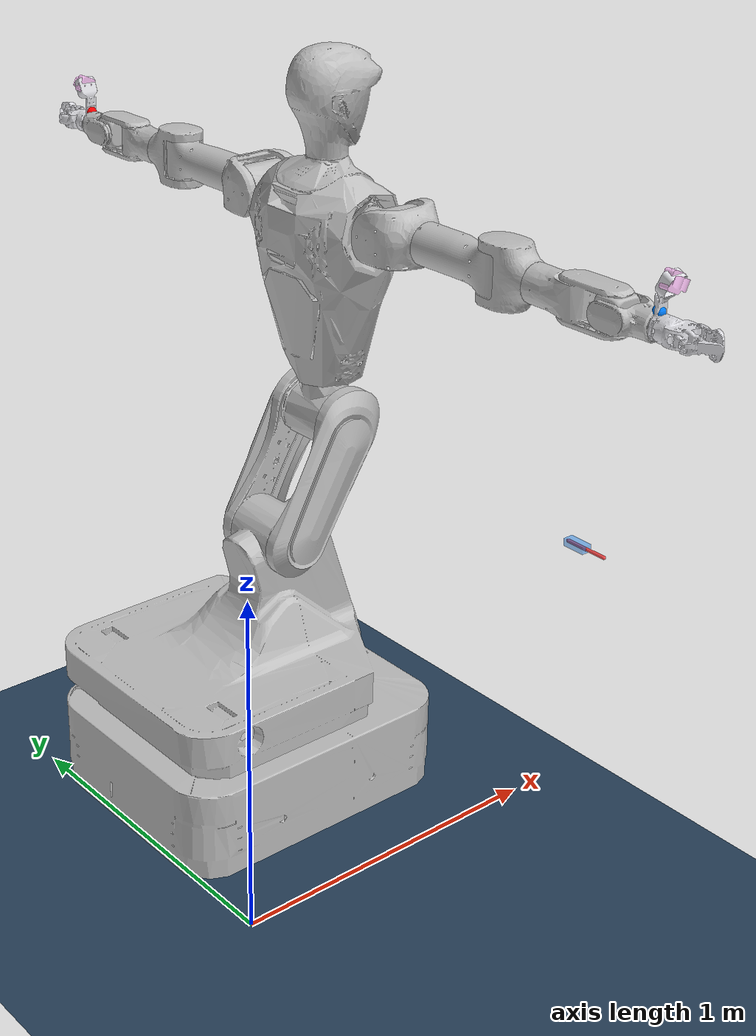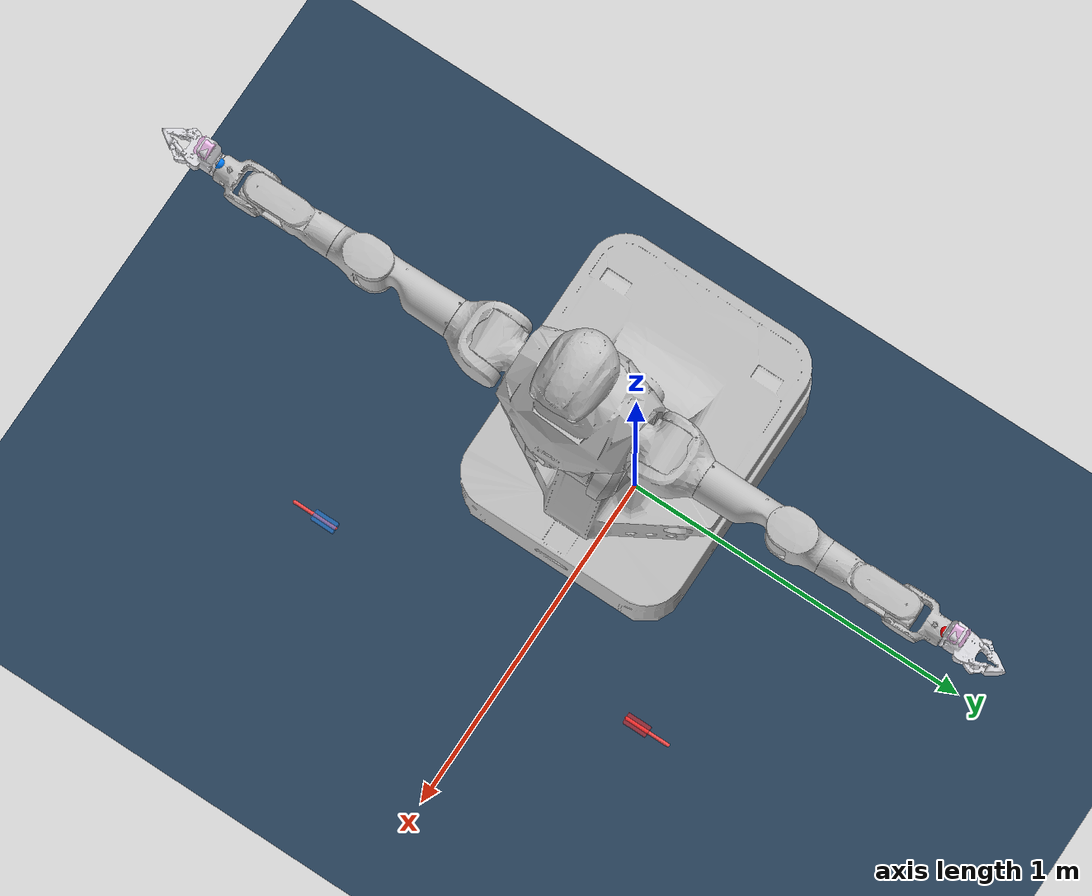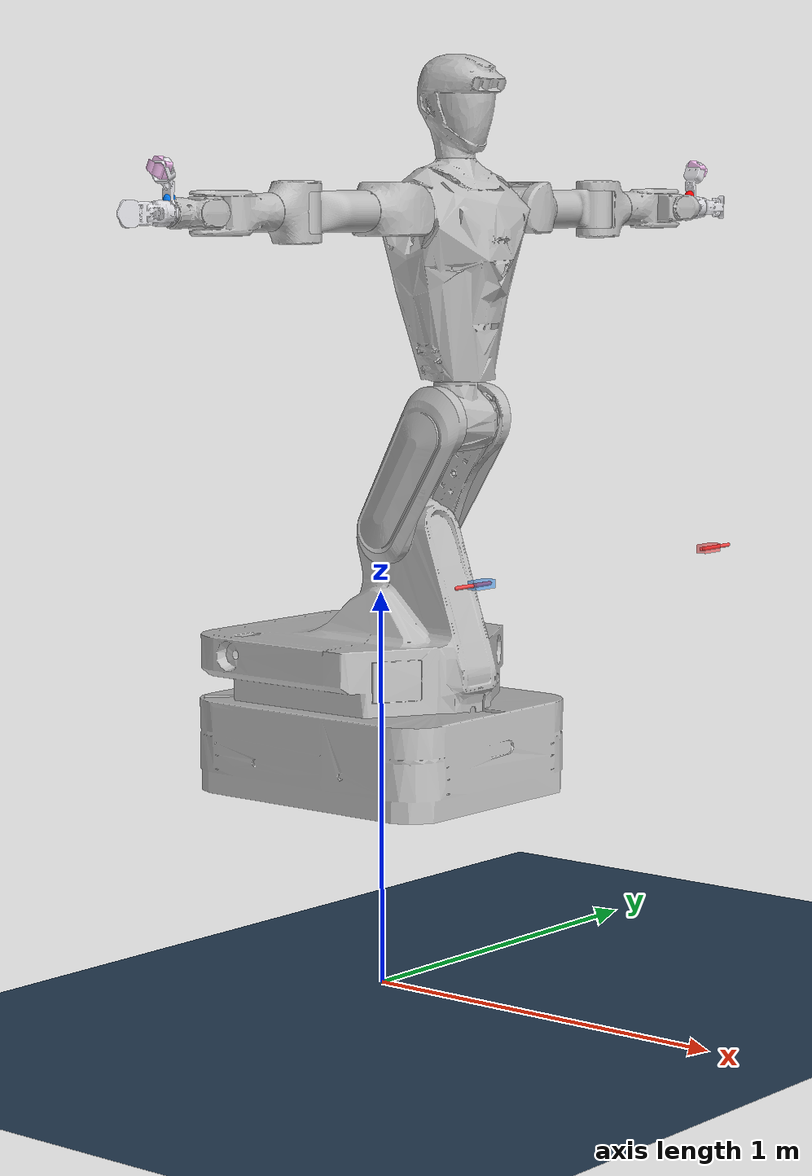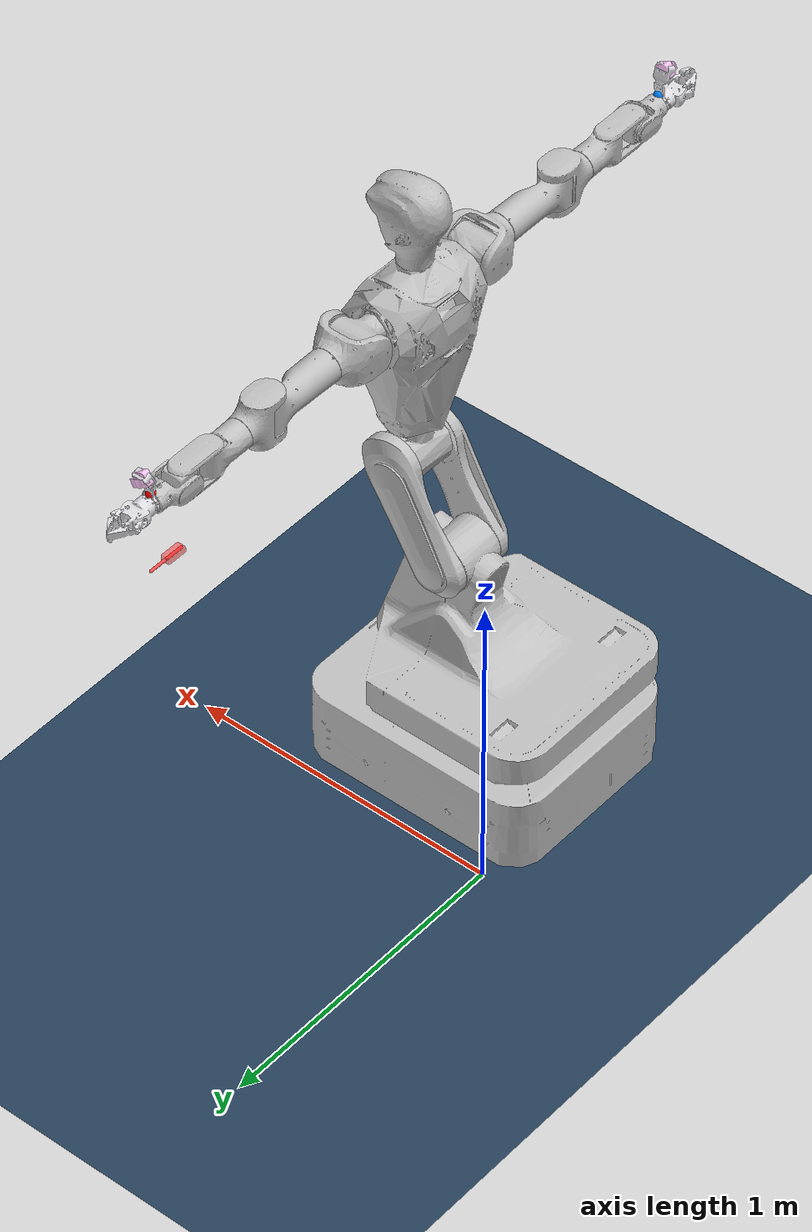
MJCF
<mujoco model="dual_arm_robot">
    <compiler angle="radian" meshdir="../meshes/"/>

    <option gravity="0 0 -9.81" timestep="0.002" integrator="implicitfast" iterations="100" solver="Newton" tolerance="1e-8"/>

    <visual>
        <global offwidth="1920" offheight="1080"/>
        <quality shadowsize="4096"/>
    </visual>

    <default>
        <joint armature="10" damping="100" limited="true" frictionloss="1"/>
        <geom condim="4" friction="1 0.5 0.5" margin="0.001"/>
        <default class="visual_geom">
            <geom contype="0" conaffinity="0"/>
        </default>
        <default class="collision_geom">
            <geom group="3" rgba="1 1 1 0"/>
        </default>
        <motor ctrllimited="true" ctrlrange="-500 500"/>
    </default>

    <asset>
        <!-- Visual meshes -->
        <mesh name="base_visual" file="visual/base_link.STL"/>
        <mesh name="body3_visual" file="visual/body3_link.STL"/>
        <mesh name="body2_visual" file="visual/body2_link.STL"/>
        <mesh name="body1_visual" file="visual/body1_link.STL"/>
        <mesh name="hand2_visual" file="visual/hand2_link.STL"/>
        <mesh name="hand1_visual" file="visual/hand1_link.STL"/>

        <mesh name="left_arm1_visual" file="visual/left_arm_link1.STL"/>
        <mesh name="left_arm2_visual" file="visual/left_arm_link2.STL"/>
        <mesh name="left_arm3_visual" file="visual/left_arm_link3.STL"/>
        <mesh name="left_arm4_visual" file="visual/left_arm_link4.STL"/>
        <mesh name="left_arm5_visual" file="visual/left_arm_link5.STL"/>
        <mesh name="left_arm6_visual" file="visual/left_arm_link6.STL"/>
        <mesh name="left_arm7_visual" file="visual/left_arm_link7.STL"/>
        <mesh name="left_arm8_visual" file="visual/left_arm_link8.STL"/>
        <mesh name="left_arm9_visual" file="visual/left_arm_link9.STL"/>
        <mesh name="left_arm10_visual" file="visual/left_arm_link10.STL"/>

        <mesh name="right_arm1_visual" file="visual/right_arm_link1.STL"/>
        <mesh name="right_arm2_visual" file="visual/right_arm_link2.STL"/>
        <mesh name="right_arm3_visual" file="visual/right_arm_link3.STL"/>
        <mesh name="right_arm4_visual" file="visual/right_arm_link4.STL"/>
        <mesh name="right_arm5_visual" file="visual/right_arm_link5.STL"/>
        <mesh name="right_arm6_visual" file="visual/right_arm_link6.STL"/>
        <mesh name="right_arm7_visual" file="visual/right_arm_link7.STL"/>
        <mesh name="right_arm8_visual" file="visual/right_arm_link8.STL"/>
        <mesh name="right_arm9_visual" file="visual/right_arm_link9.STL"/>
        <mesh name="right_arm10_visual" file="visual/right_arm_link10.STL"/>

        <!-- Collision meshes -->
        <mesh name="base_collision" file="collision/base_link.STL"/>
        <mesh name="body3_collision" file="collision/body3_link.STL"/>
        <mesh name="body2_collision" file="collision/body2_link.STL"/>
        <mesh name="body1_collision" file="collision/body1_link.STL"/>
        <mesh name="hand2_collision" file="collision/hand2_link.STL"/>
        <mesh name="hand1_collision" file="collision/hand1_link.STL"/>

        <mesh name="left_arm1_collision" file="collision/left_arm_link1.STL"/>
        <mesh name="left_arm2_collision" file="collision/left_arm_link2.STL"/>
        <mesh name="left_arm3_collision" file="collision/left_arm_link3.STL"/>
        <mesh name="left_arm4_collision" file="collision/left_arm_link4.STL"/>
        <mesh name="left_arm5_collision" file="collision/left_arm_link5.STL"/>
        <mesh name="left_arm6_collision" file="collision/left_arm_link6.STL"/>
        <mesh name="left_arm7_collision" file="collision/left_arm_link7.STL"/>
        <mesh name="left_arm8_collision" file="collision/left_arm_link8.STL"/>
        <mesh name="left_arm9_collision" file="collision/left_arm_link9.STL"/>
        <mesh name="left_arm10_collision" file="collision/left_arm_link10.STL"/>

        <mesh name="right_arm1_collision" file="collision/right_arm_link1.STL"/>
        <mesh name="right_arm2_collision" file="collision/right_arm_link2.STL"/>
        <mesh name="right_arm3_collision" file="collision/right_arm_link3.STL"/>
        <mesh name="right_arm4_collision" file="collision/right_arm_link4.STL"/>
        <mesh name="right_arm5_collision" file="collision/right_arm_link5.STL"/>
        <mesh name="right_arm6_collision" file="collision/right_arm_link6.STL"/>
        <mesh name="right_arm7_collision" file="collision/right_arm_link7.STL"/>
        <mesh name="right_arm8_collision" file="collision/right_arm_link8.STL"/>
        <mesh name="right_arm9_collision" file="collision/right_arm_link9.STL"/>
        <mesh name="right_arm10_collision" file="collision/right_arm_link10.STL"/>

        <texture type="skybox" builtin="gradient" rgb1="0.3 0.5 0.7" rgb2="0 0 0" width="512" height="3072"/>
        <texture type="2d" name="groundplane" builtin="checker" mark="edge" rgb1="0.2 0.3 0.4" rgb2="0.1 0.2 0.3" markrgb="0.8 0.8 0.8" width="300" height="300"/>
        <material name="groundplane" texture="groundplane" texuniform="true" texrepeat="5 5" reflectance="0.2"/>
    </asset>

    <keyframe>
        <!-- Home position: all joints at zero -->
        <key name="home"
             qpos="0 0 0 0 0 0 0 0 0 0 0 0 0 0 0 0 0 0 0"
             qvel="0 0 0 0 0 0 0 0 0 0 0 0 0 0 0 0 0 0 0"
             ctrl="0 0 0 0 0 0 0 0 0 0 0 0 0 0 0 0 0 0 0"/>

        <!-- Teleop startup pose: wrist joints rotated so the hand cameras point upward -->
        <key name="teleop_home"
             time="762.896"
             qpos="0 0 0 0 0 0 -1.34061 0 -1.48194 1.3826 0 0 0 1.34061 0 1.43716 -1.3826 0 0"
             qvel="0 0 0 0 0 0 0 0 0 0 0 0 0 0 0 0 0 0 0"
             ctrl="0 0 0 0 0 0 -1.34061 0 -1.48194 1.3826 0 0 0 1.34061 0 1.43716 -1.3826 0 0"/>
    </keyframe>

    <worldbody>
        <!-- Camera looking at robot -->
        <camera name="main_cam" pos="2 -2 1.5" quat="0.5 0.5 0.5 0.5"/>
        <camera name="front" pos="2 0 1" xyaxes="0 1 0 0 0 1"/>
        <camera name="side" pos="0 2 1" xyaxes="-1 0 0 0 0 1"/>

        <light pos="0 0 5" dir="0 0 -1" directional="true"/>
        <light pos="2 2 3" dir="-0.5 -0.5 -1"/>
        <geom name="floor" pos="0 0 0" size="5 5 0.1" type="plane" material="groundplane"/>

        <!-- IK target markers (updated by mujoco_sim_node callbacks) -->
        <body name="left_target_marker" mocap="true" pos="0.68 0.42 1.12">
            <!-- target_pose 是 link8 姿态；marker 长轴表示 link8 -> link14 的握持方向。 -->
            <geom class="visual_geom" name="left_target_geom" type="box"
                  pos="0 0.030 0"
                  quat="0.70710678 -0.70710678 0 0"
                  size="0.014 0.010 0.032"
                  rgba="1 0.12 0.12 0.50"/>
            <geom class="visual_geom" name="left_target_nose" type="capsule"
                  fromto="0 0 0 0 0.118 0"
                  size="0.0048"
                  rgba="1 0.30 0.30 0.98"/>
        </body>
        <body name="right_target_marker" mocap="true" pos="0.68 -0.42 1.12">
            <geom class="visual_geom" name="right_target_geom" type="box"
                  pos="0 -0.030 0"
                  quat="0.70710678 0.70710678 0 0"
                  size="0.014 0.010 0.032"
                  rgba="0.12 0.55 1 0.50"/>
            <geom class="visual_geom" name="right_target_nose" type="capsule"
                  fromto="0 0 0 0 -0.118 0"
                  size="0.0048"
                  rgba="1 0.30 0.30 0.98"/>
        </body>

        <!-- Workspace center markers (updated by /arm_* /workspace_center) -->
        <body name="left_workspace_center_marker" mocap="true" pos="0.2 0.25 0.6">
            <geom class="visual_geom" name="left_workspace_center_geom" type="sphere" size="0.012" rgba="1 0.55 0.2 0.95"/>
        </body>
        <body name="right_workspace_center_marker" mocap="true" pos="0.2 -0.25 0.6">
            <geom class="visual_geom" name="right_workspace_center_geom" type="sphere" size="0.012" rgba="0.2 1 0.55 0.95"/>
        </body>

        <!-- Base link (link0) - fixed to world -->
        <body name="link0" pos="0 0 0.5">
            <geom class="visual_geom" type="mesh" mesh="base_visual" rgba="0.75 0.75 0.75 1"/>
            <geom class="collision_geom" type="box" pos="0.065670 0.003475 -0.026748" size="0.322572 0.264930 0.322390"/>
            <inertial pos="0.0104 -0.0004 0.1597" mass="182.85"
                      diaginertia="6.378 8.383 13.069"/>

            <!-- Body chain: body3 -> link1 -> body2 -> link2 -> body1 -> link3 -> hand2 -> link4 -> hand1 -> link5 -->
            <body name="link1" pos="0.0817 -0.083 0.6631">
                <joint name="body3" type="hinge" axis="0 -1 0" range="-2.094395 2.007129" damping="3000" frictionloss="1"/>
                <geom class="visual_geom" type="mesh" mesh="body3_visual" rgba="0.75 0.75 0.75 1"/>
                <geom class="collision_geom" type="box" pos="0.000001 0.001278 -0.001010" size="0.072109 0.110043 0.197059"/>
                <inertial pos="0.0815 0.0817 0.1411" mass="3.87"
                          diaginertia="0.041 0.058 0.018"/>

                <body name="link2" pos="0.16 0 0.2771">
                    <joint name="body2" type="hinge" axis="0 1 0" range="-2.007129 2.094395" damping="3000" frictionloss="1"/>
                    <geom class="visual_geom" type="mesh" mesh="body2_visual" rgba="0.75 0.75 0.75 1"/>
                    <geom class="collision_geom" type="box" pos="-0.000818 -0.009780 0.011888" size="0.060645 0.076741 0.090885"/>
                    <inertial pos="0.0001 0.0758 0.0176" mass="8.43"
                              diaginertia="0.029 0.030 0.024"/>

                    <body name="link3" pos="0 0.083 0.1245">
                        <joint name="body1" type="hinge" axis="0 0 1" range="-2.600541 2.600541"/>
                        <geom class="visual_geom" type="mesh" mesh="body1_visual" rgba="0.75 0.75 0.75 1"/>
                        <geom class="collision_geom" type="box" pos="0.005451 0.000852 -0.035797" size="0.114144 0.143758 0.213480"/>
                        <inertial pos="0.0003 0.0003 0.2697" mass="11.79"
                                  diaginertia="0.083 0.068 0.040"/>

                        <!-- hand2 and link4 -->
                        <body name="link4" pos="0 0 0.4572">
                            <joint name="hand2" type="hinge" axis="0 0 1" range="-0.767945 0.767945"/>
                            <geom class="visual_geom" type="mesh" mesh="hand2_visual" rgba="0.75 0.75 0.75 1"/>
                            <geom class="collision_geom" type="box" pos="0.000072 0.006927 0.002959" size="0.016067 0.027436 0.031647"/>
                            <inertial pos="0 0.0063 0.0206" mass="0.079"
                                      diaginertia="0.00005 0.00003 0.00004"/>

                            <!-- hand1 and link5 -->
                            <body name="link5" pos="0 -0.03475 0.05">
                                <joint name="hand1" type="hinge" axis="0 1 0" range="-2.775074 2.775074"/>
                                <geom class="visual_geom" type="mesh" mesh="hand1_visual" rgba="0.75 0.75 0.75 1"/>
                                <geom class="collision_geom" type="box" pos="0.000036 0.003629 -0.023173" size="0.061963 0.079307 0.103886"/>
                                <inertial pos="0.7415 0.0347 -0.053" mass="15.85"
                                          diaginertia="2.51 1.68 2.06"/>
                            </body>
                        </body>

                        <!-- Left arm chain from link3 -->
                        <body name="link6l" pos="0 0.14 0.3872">
                            <joint name="left_arm1" type="hinge" axis="0 1 0" range="-3.141593 1.570796"/>
                            <geom class="visual_geom" type="mesh" mesh="left_arm1_visual" rgba="0.75 0.75 0.75 1"/>
                            <geom class="collision_geom" type="box" pos="-0.000205 -0.001155 0.015855" size="0.039620 0.049465 0.059874"/>
                            <inertial pos="0.0059 0.0939 0.0003" mass="2.43"
                                      diaginertia="0.0038 0.0035 0.0044"/>

                            <body name="link7l" pos="0.063 0.1 0">
                                <joint name="left_arm2" type="hinge" axis="1 0 0" range="-1.605703 1.37881"/>
                                <geom class="visual_geom" type="mesh" mesh="left_arm2_visual" rgba="0.75 0.75 0.75 1"/>
                                <geom class="collision_geom" type="box" pos="0.004338 0.008038 0.000522" size="0.046158 0.058746 0.063246"/>
                                <inertial pos="-0.0602 0.0405 -0.0002" mass="0.66"
                                          diaginertia="0.0016 0.002 0.0022"/>

                                <body name="link8l" pos="-0.063 0.092 0" euler="1.5708 0 0">
                                    <joint name="left_arm3" type="hinge" axis="0 0 -1" range="-2.792527 2.792527"/>
                                    <geom class="visual_geom" type="mesh" mesh="left_arm3_visual" rgba="0.75 0.75 0.75 1"/>
                                    <geom class="collision_geom" type="box" pos="0.000689 -0.001629 0.012741" size="0.035524 0.042830 0.098219"/>
                                    <inertial pos="-0.0007 0.0012 -0.1388" mass="1.70"
                                              diaginertia="0.0043 0.0041 0.002"/>

                                    <body name="link9l" pos="0 0.055 -0.228">
                                        <joint name="left_arm4" type="hinge" axis="0 1 0" range="-1.989675 0.15708"/>
                                        <geom class="visual_geom" type="mesh" mesh="left_arm4_visual" rgba="0.75 0.75 0.75 1"/>
                                        <geom class="collision_geom" type="box" pos="0.000060 -0.000412 0.000088" size="0.033244 0.053138 0.051411"/>
                                        <inertial pos="0 -0.0554 -0.0338" mass="0.47"
                                                  diaginertia="0.0011 0.0008 0.0009"/>

                                        <body name="link10l" pos="0 -0.055 -0.075">
                                            <joint name="left_arm5" type="hinge" axis="0 0 -1" range="-2.792527 2.792527"/>
                                            <geom class="visual_geom" type="mesh" mesh="left_arm5_visual" rgba="0.75 0.75 0.75 1"/>
                                            <geom class="collision_geom" type="box" pos="0.000266 0.002035 -0.012022" size="0.030638 0.036583 0.097597"/>
                                            <inertial pos="0 -0.002 -0.1024" mass="1.47"
                                                      diaginertia="0.0016 0.0015 0.0009"/>

                                            <body name="link11l" pos="0 -0.037 -0.245">
                                                <joint name="left_arm6" type="hinge" axis="0 1 0" range="-1.047198 1.047198"/>
                                                <geom class="visual_geom" type="mesh" mesh="left_arm6_visual" rgba="0.75 0.75 0.75 1"/>
                                                <geom class="collision_geom" type="box" pos="-0.000198 0.004437 0.000628" size="0.026380 0.032623 0.031594"/>
                                                <inertial pos="-0.0034 0.0364 0.0003" mass="0.63"
                                                          diaginertia="0.0004 0.00036 0.00039"/>

                                                <body name="link12l" pos="-0.0385 0.037 0" euler="-1.5708 0 0">
                                                    <joint name="left_arm7" type="hinge" axis="-1 0 0" range="-1.570796 1.570796"/>
                                                    <geom class="visual_geom" type="mesh" mesh="left_arm7_visual" rgba="0.75 0.75 0.75 1"/>
                                                    <geom class="collision_geom" type="box" pos="-0.000332 0.003315 0.010292" size="0.022745 0.037583 0.049620"/>
                                                    <inertial pos="0.0396 0.0517 0.0003" mass="0.24"
                                                              diaginertia="0.00021 0.00017 0.00027"/>

                                                    <!-- Fixed end effector links for left arm -->
                                                    <body name="link13l" pos="0.0385 0.10772 0">
                                                        <geom class="visual_geom" type="mesh" mesh="left_arm8_visual" rgba="0.87 0.87 0.89 1"/>
                                                        <geom class="collision_geom" type="box" pos="0.000745 0.000026 -0.019274" size="0.011408 0.017442 0.045960"/>
                                                        <inertial pos="0.0002 0.0086 0.0481" mass="0.13"
                                                                  diaginertia="0.00007 0.00008 0.00003"/>
                                                        <!-- Left arm IK end-effector frame marker (link12l-link13l contact / left_arm_link8 origin) -->
                                                        <site name="left_ee" type="sphere" pos="0 0 0" size="0.012" rgba="1 0 0 1"/>
                                                        <geom class="visual_geom" name="left_ee_marker" type="sphere" pos="0 0 0.03" size="0.014" rgba="1 0 0 1"/>

                                                        <body name="link14l" pos="0 0.008 0">
                                                            <geom class="visual_geom" type="mesh" mesh="left_arm9_visual" rgba="0.87 0.87 0.89 1"/>
                                                            <geom class="collision_geom" type="box" pos="-0.000149 0.002321 -0.017551" size="0.017977 0.026244 0.045850"/>
                                                            <inertial pos="0.0004 0.0145 -0.0008" mass="0.026"
                                                                      diaginertia="0.000011 0.000019 0.000011"/>
                                                        </body>

                                                        <body name="link15l" pos="0 0.0127 0.0985" euler="0 0.4363 1.5708">
                                                            <geom class="visual_geom" type="mesh" mesh="left_arm10_visual" rgba="1 0.78 0.98 1"/>
                                                            <geom class="collision_geom" type="box" pos="0.005228 -0.000038 -0.000157" size="0.011167 0.012156 0.013461"/>
                                                            <inertial pos="0.0116 0 0" mass="0.039"
                                                                      diaginertia="0.000011 0.000007 0.000007"/>
                                                        </body>
                                                    </body>
                                                </body>
                                            </body>
                                        </body>
                                    </body>
                                </body>
                            </body>
                        </body>

                        <!-- Right arm chain from link3 -->
                        <body name="link6r" pos="0 -0.14 0.3872">
                            <joint name="right_arm1" type="hinge" axis="0 -1 0" range="-1.570796 3.141593"/>
                            <geom class="visual_geom" type="mesh" mesh="right_arm1_visual" rgba="0.75 0.75 0.75 1"/>
                            <geom class="collision_geom" type="box" pos="-0.000096 -0.000867 -0.015482" size="0.039614 0.049356 0.060034"/>
                            <inertial pos="0.0064 -0.0936 0.0003" mass="2.45"
                                      diaginertia="0.0039 0.0036 0.0044"/>

                            <body name="link7r" pos="0.063 -0.1 0">
                                <joint name="right_arm2" type="hinge" axis="1 0 0" range="-1.37881 1.605703"/>
                                <geom class="visual_geom" type="mesh" mesh="right_arm2_visual" rgba="0.75 0.75 0.75 1"/>
                                <geom class="collision_geom" type="box" pos="0.004064 -0.008153 0.000768" size="0.046197 0.058995 0.063250"/>
                                <inertial pos="-0.0602 -0.0405 -0.0002" mass="0.66"
                                          diaginertia="0.0016 0.002 0.0022"/>

                                <body name="link8r" pos="-0.063 -0.092 0" euler="-1.5708 0 0">
                                    <joint name="right_arm3" type="hinge" axis="0 0 -1" range="-2.775074 2.775074"/>
                                    <geom class="visual_geom" type="mesh" mesh="right_arm3_visual" rgba="0.75 0.75 0.75 1"/>
                                    <geom class="collision_geom" type="box" pos="0.000696 0.000415 0.012654" size="0.035523 0.042672 0.098468"/>
                                    <inertial pos="-0.0007 -0.001 -0.1388" mass="1.70"
                                              diaginertia="0.0043 0.0041 0.002"/>

                                    <body name="link9r" pos="0 -0.055 -0.228">
                                        <joint name="right_arm4" type="hinge" axis="0 -1 0" range="-0.174533 1.989675"/>
                                        <geom class="visual_geom" type="mesh" mesh="right_arm4_visual" rgba="0.75 0.75 0.75 1"/>
                                        <geom class="collision_geom" type="box" pos="-0.000060 -0.000412 -0.000088" size="0.033244 0.053138 0.051411"/>
                                        <inertial pos="0 0.0554 -0.0338" mass="0.47"
                                                  diaginertia="0.0011 0.0008 0.0009"/>

                                        <body name="link10r" pos="0 0.055 -0.075">
                                            <joint name="right_arm5" type="hinge" axis="0 0 -1" range="-2.775074 2.775074"/>
                                            <geom class="visual_geom" type="mesh" mesh="right_arm5_visual" rgba="0.75 0.75 0.75 1"/>
                                            <geom class="collision_geom" type="box" pos="-0.000266 -0.002035 -0.012022" size="0.030638 0.036583 0.097597"/>
                                            <inertial pos="0 0.002 -0.1024" mass="1.47"
                                                      diaginertia="0.0016 0.0015 0.0009"/>

                                            <body name="link11r" pos="0 0.037 -0.245">
                                                <joint name="right_arm6" type="hinge" axis="0 -1 0" range="-1.047198 1.047198"/>
                                                <geom class="visual_geom" type="mesh" mesh="right_arm6_visual" rgba="0.75 0.75 0.75 1"/>
                                                <geom class="collision_geom" type="box" pos="-0.000177 0.004627 -0.000667" size="0.026606 0.032105 0.031050"/>
                                                <inertial pos="-0.0034 -0.0364 0.0003" mass="0.63"
                                                          diaginertia="0.0004 0.00036 0.00039"/>

                                                <body name="link12r" pos="-0.0385 -0.037 0" euler="1.5708 0 0">
                                                    <joint name="right_arm7" type="hinge" axis="-1 0 0" range="-1.570796 1.570796"/>
                                                    <geom class="visual_geom" type="mesh" mesh="right_arm7_visual" rgba="0.75 0.75 0.75 1"/>
                                                    <geom class="collision_geom" type="box" pos="0.000009 0.003830 -0.010008" size="0.022569 0.037851 0.049736"/>
                                                    <inertial pos="0.0397 -0.0517 0.0003" mass="0.24"
                                                              diaginertia="0.00021 0.00017 0.00027"/>

                                                    <!-- Fixed end effector links for right arm -->
                                                    <body name="link13r" pos="0.0385 -0.10772 0">
                                                        <geom class="visual_geom" type="mesh" mesh="right_arm8_visual" rgba="0.87 0.87 0.89 1"/>
                                                        <geom class="collision_geom" type="box" pos="-0.000745 -0.000026 -0.019274" size="0.011408 0.017442 0.045960"/>
                                                        <inertial pos="-0.0002 -0.0086 0.0481" mass="0.13"
                                                                  diaginertia="0.00007 0.00008 0.00003"/>
                                                        <!-- Right arm IK end-effector frame marker (link12r-link13r contact / right_arm_link8 origin) -->
                                                        <site name="right_ee" type="sphere" pos="0 0 0" size="0.012" rgba="0 0.5 1 1"/>
                                                        <geom class="visual_geom" name="right_ee_marker" type="sphere" pos="0 0 0.03" size="0.014" rgba="0 0.5 1 1"/>

                                                        <body name="link14r" pos="0 -0.008 0">
                                                            <geom class="visual_geom" type="mesh" mesh="right_arm9_visual" rgba="0.87 0.87 0.89 1"/>
                                                            <geom class="collision_geom" type="box" pos="0.000144 0.002314 0.017555" size="0.017977 0.026242 0.045849"/>
                                                            <inertial pos="0.0004 -0.0145 0.0008" mass="0.026"
                                                                      diaginertia="0.000011 0.000019 0.000011"/>
                                                        </body>

                                                        <body name="link15r" pos="0 -0.0127 0.0985" euler="0 0.4363 -1.5708">
                                                            <geom class="visual_geom" type="mesh" mesh="right_arm10_visual" rgba="1 0.78 0.98 1"/>
                                                            <geom class="collision_geom" type="box" pos="0.005228 -0.000038 -0.000157" size="0.011167 0.012156 0.013461"/>
                                                            <inertial pos="0.0116 0 0" mass="0.039"
                                                                      diaginertia="0.000011 0.000007 0.000007"/>
                                                        </body>
                                                    </body>
                                                </body>
                                            </body>
                                        </body>
                                    </body>
                                </body>
                            </body>
                        </body>
                    </body>
                </body>
            </body>
        </body>
    </worldbody>

    <contact>
        <exclude body1="link0" body2="link1"/>
        <exclude body1="link3" body2="link5"/>
        <exclude body1="link10l" body2="link12l"/>
        <exclude body1="link10r" body2="link12r"/>
        <exclude body1="link1" body2="link3"/>
        <exclude body1="link5" body2="link6l"/>
        <exclude body1="link5" body2="link6r"/>
        <exclude body1="link6l" body2="link8l"/>
        <exclude body1="link6r" body2="link8r"/>
    </contact>

    <actuator>
        <!-- Body actuators: higher stiffness, less overdamped -->
        <position name="body3" joint="body3" kp="600" kv="1800" ctrllimited="true" ctrlrange="-2.094395 2.007129"/>
        <position name="body2" joint="body2" kp="900" kv="2000" ctrllimited="true" ctrlrange="-2.007129 2.094395"/>
        <position name="body1" joint="body1" kp="2200" kv="4000" ctrllimited="true" ctrlrange="-2.600541 2.600541"/>
        <position name="hand2" joint="hand2" kp="800" kv="2000" ctrllimited="true" ctrlrange="-0.767945 0.767945"/>
        <position name="hand1" joint="hand1" kp="1200" kv="2200" ctrllimited="true" ctrlrange="-2.775074 2.775074"/>

        <!-- Left arm actuators: stronger to resist gravity -->
        <position name="left_arm1" joint="left_arm1" kp="1500" kv="250" ctrllimited="true" ctrlrange="-3.141593 1.570796"/>
        <position name="left_arm2" joint="left_arm2" kp="1500" kv="250" ctrllimited="true" ctrlrange="-1.605703 1.37881"/>
        <position name="left_arm3" joint="left_arm3" kp="1200" kv="200" ctrllimited="true" ctrlrange="-2.792527 2.792527"/>
        <position name="left_arm4" joint="left_arm4" kp="1200" kv="200" ctrllimited="true" ctrlrange="-1.989675 0.15708"/>
        <position name="left_arm5" joint="left_arm5" kp="900" kv="150" ctrllimited="true" ctrlrange="-2.792527 2.792527"/>
        <position name="left_arm6" joint="left_arm6" kp="900" kv="150" ctrllimited="true" ctrlrange="-1.047198 1.047198"/>
        <position name="left_arm7" joint="left_arm7" kp="900" kv="150" ctrllimited="true" ctrlrange="-1.570796 1.570796"/>

        <!-- Right arm actuators: stronger to resist gravity -->
        <position name="right_arm1" joint="right_arm1" kp="1500" kv="250" ctrllimited="true" ctrlrange="-1.570796 3.141593"/>
        <position name="right_arm2" joint="right_arm2" kp="1500" kv="250" ctrllimited="true" ctrlrange="-1.37881 1.605703"/>
        <position name="right_arm3" joint="right_arm3" kp="1200" kv="200" ctrllimited="true" ctrlrange="-2.775074 2.775074"/>
        <position name="right_arm4" joint="right_arm4" kp="1200" kv="200" ctrllimited="true" ctrlrange="-0.174533 1.989675"/>
        <position name="right_arm5" joint="right_arm5" kp="900" kv="150" ctrllimited="true" ctrlrange="-2.775074 2.775074"/>
        <position name="right_arm6" joint="right_arm6" kp="900" kv="150" ctrllimited="true" ctrlrange="-1.047198 1.047198"/>
        <position name="right_arm7" joint="right_arm7" kp="900" kv="150" ctrllimited="true" ctrlrange="-1.570796 1.570796"/>
    </actuator>

    <sensor>
        <!-- Joint position sensors -->
        <jointpos name="pos_body3" joint="body3"/>
        <jointpos name="pos_body2" joint="body2"/>
        <jointpos name="pos_body1" joint="body1"/>
        <jointpos name="pos_hand2" joint="hand2"/>
        <jointpos name="pos_hand1" joint="hand1"/>

        <jointpos name="pos_left_arm1" joint="left_arm1"/>
        <jointpos name="pos_left_arm2" joint="left_arm2"/>
        <jointpos name="pos_left_arm3" joint="left_arm3"/>
        <jointpos name="pos_left_arm4" joint="left_arm4"/>
        <jointpos name="pos_left_arm5" joint="left_arm5"/>
        <jointpos name="pos_left_arm6" joint="left_arm6"/>
        <jointpos name="pos_left_arm7" joint="left_arm7"/>

        <jointpos name="pos_right_arm1" joint="right_arm1"/>
        <jointpos name="pos_right_arm2" joint="right_arm2"/>
        <jointpos name="pos_right_arm3" joint="right_arm3"/>
        <jointpos name="pos_right_arm4" joint="right_arm4"/>
        <jointpos name="pos_right_arm5" joint="right_arm5"/>
        <jointpos name="pos_right_arm6" joint="right_arm6"/>
        <jointpos name="pos_right_arm7" joint="right_arm7"/>

        <!-- Joint velocity sensors -->
        <jointvel name="vel_body3" joint="body3"/>
        <jointvel name="vel_body2" joint="body2"/>
        <jointvel name="vel_body1" joint="body1"/>
        <jointvel name="vel_hand2" joint="hand2"/>
        <jointvel name="vel_hand1" joint="hand1"/>

        <jointvel name="vel_left_arm1" joint="left_arm1"/>
        <jointvel name="vel_left_arm2" joint="left_arm2"/>
        <jointvel name="vel_left_arm3" joint="left_arm3"/>
        <jointvel name="vel_left_arm4" joint="left_arm4"/>
        <jointvel name="vel_left_arm5" joint="left_arm5"/>
        <jointvel name="vel_left_arm6" joint="left_arm6"/>
        <jointvel name="vel_left_arm7" joint="left_arm7"/>

        <jointvel name="vel_right_arm1" joint="right_arm1"/>
        <jointvel name="vel_right_arm2" joint="right_arm2"/>
        <jointvel name="vel_right_arm3" joint="right_arm3"/>
        <jointvel name="vel_right_arm4" joint="right_arm4"/>
        <jointvel name="vel_right_arm5" joint="right_arm5"/>
        <jointvel name="vel_right_arm6" joint="right_arm6"/>
        <jointvel name="vel_right_arm7" joint="right_arm7"/>

        <!-- End effector frame sensors -->
        <framepos name="left_ee_pos" objtype="site" objname="left_ee"/>
        <framequat name="left_ee_quat" objtype="site" objname="left_ee"/>
        <framepos name="right_ee_pos" objtype="site" objname="right_ee"/>
        <framequat name="right_ee_quat" objtype="site" objname="right_ee"/>
    </sensor>
</mujoco>
